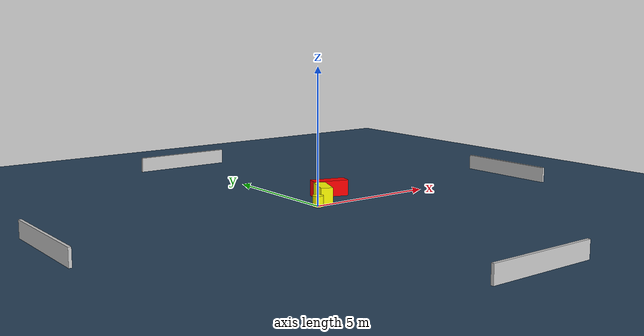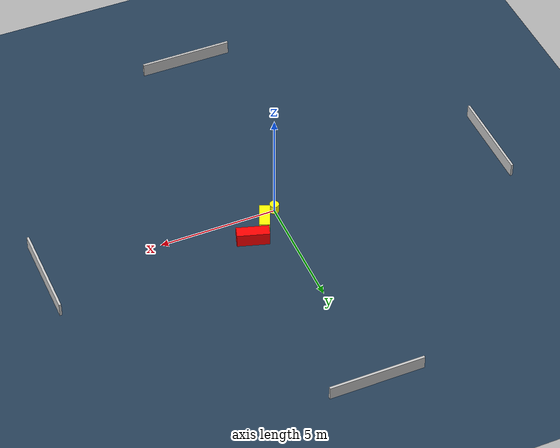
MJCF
<?xml version="1.0" ?>
<mujoco model="generated_environment">
  <option timestep="0.01" integrator="RK4" cone="elliptic"/>
  <default>
    <geom density="1"/>
  </default>
  <asset>
    <texture builtin="gradient" height="3072" name="skybox" rgb1="0.3 0.5 0.7" rgb2="0 0 0" type="skybox" width="512"/>
    <texture builtin="checker" height="300" name="groundplane" rgb1="0.2 0.3 0.4" rgb2="0.1 0.2 0.3" type="2d" width="300"/>
    <material name="groundplane" reflectance="0.2" texrepeat="5 5" texture="groundplane"/>
  </asset>
  <worldbody>
    <light dir="0 0 -1" directional="true" pos="0 0 1.5"/>
    <geom condim="3" friction="0.5 0.005 0.001" material="groundplane" name="floor" pos="0 0 0" size="0 0 0.05" type="plane"/>
    <body name="walls">
      <geom name="wall_1" condim="4" pos="-10.0 0.0 0.3" rgba="0.800000011920929 0.800000011920929 0.800000011920929 1.0" size="0.05 2.0 0.3" type="box"/>
      <geom name="wall_2" condim="4" pos="10.0 0.0 0.3" rgba="0.800000011920929 0.800000011920929 0.800000011920929 1.0" size="0.05 2.0 0.3" type="box"/>
      <geom name="wall_3" condim="4" pos="0.0 -10.0 0.3" rgba="0.800000011920929 0.800000011920929 0.800000011920929 1.0" size="2.0 0.05 0.3" type="box"/>
      <geom name="wall_4" condim="4" pos="0.0 10.0 0.3" rgba="0.800000011920929 0.800000011920929 0.800000011920929 1.0" size="2.0 0.05 0.3" type="box"/>
    </body>
    <body name="robot">
      <joint name="joint_x" type="slide" pos="0 0 0" axis="1 0 0"/>
      <joint name="joint_y" type="slide" pos="0 0 0" axis="0 1 0"/>
      <geom name="robot" type="cylinder" pos="0.0 0.0 0.2" size="0.2 0.2 0.0" mass="5.0" friction="1.0 0.005 0.0001" condim="4" rgba="1.0 1.0 0.0 1.0"/>
    </body>
    <body name="obstacle_1_movable">
      <geom name="obstacle_1_movable" condim="4" pos="0.680771377313472 0.5902589508288882 0.3" euler="0 0 67.63974096776273" friction="0.0 0.005 0.001" rgba="1.0 1.0 0.0 1.0" size="0.5571937205324178 0.22238787181922054 0.3" type="box" mass="0.1"/>
      <joint type="free"/>
    </body>
    <body name="obstacle_2_static">
      <geom name="obstacle_2_static" condim="4" pos="1.4738260777277217 1.2498219264379793 0.3" euler="0 0 162.89769356861973" friction="0.0 0.005 0.001" rgba="1.0 0.0 0.0 1.0" size="0.6806436476601043 0.24265501985559199 0.3" type="box"/>
    </body>
  </worldbody>
  <actuator>
    <motor name="actuator_x" joint="joint_x" gear="1" ctrlrange="-1 1"/>
    <motor name="actuator_y" joint="joint_y" gear="1" ctrlrange="-1 1"/>
  </actuator>
</mujoco>
